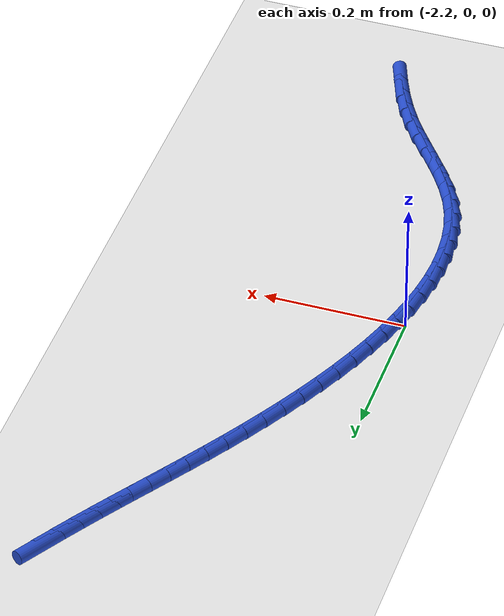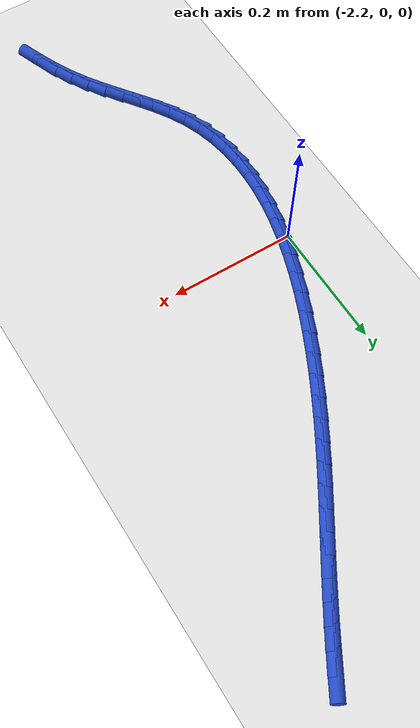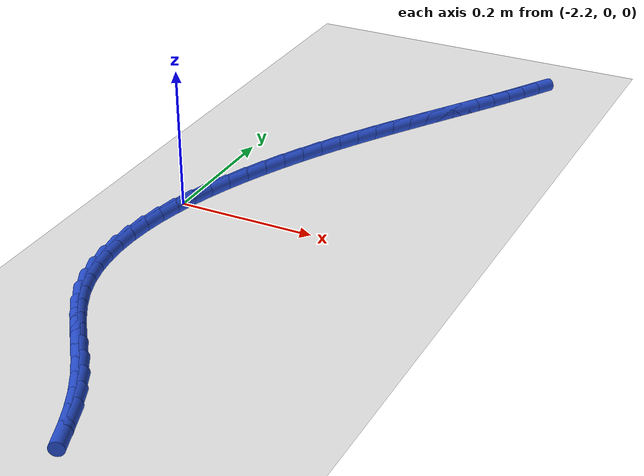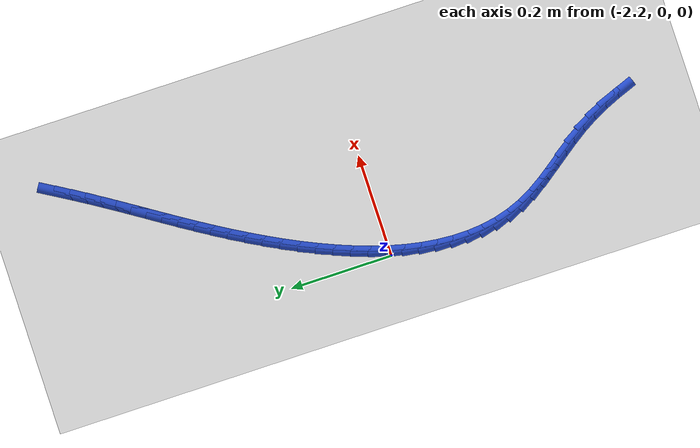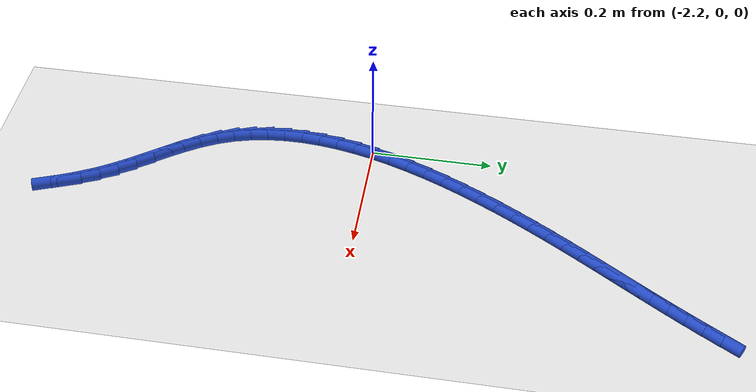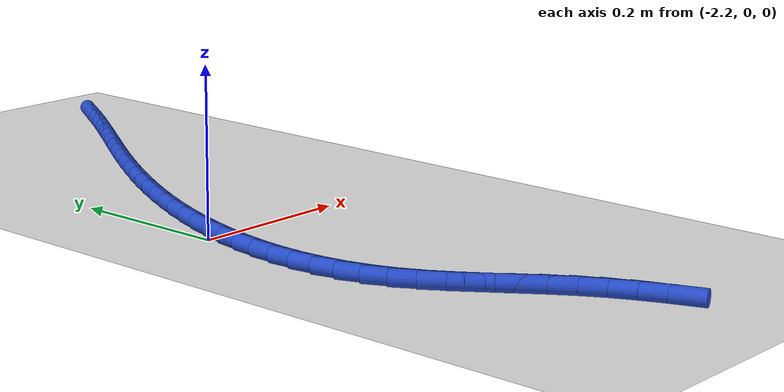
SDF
<sdf version="1.6">
 <world name="default">
  <model name="ground_plane">
   <static>1</static>
   <link name="link">
    <collision name="collision">
     <geometry><plane><normal>0 0 1</normal><size>100 100</size></plane></geometry>
     <surface><friction><ode><mu>100</mu><mu2>50</mu2></ode></friction></surface>
    </collision>
    <visual name="visual">
     <cast_shadows>0</cast_shadows>
     <geometry><plane><normal>0 0 1</normal><size>100 100</size></plane></geometry>
     <material>
      <script><uri>file://media/materials/scripts/gazebo.material</uri><name>Gazebo/WhiteGlow</name></script>
     </material>
    </visual>
   </link>
  </model>
  <model name="line">
   <link name="link_95">
    <pose>-1.8877136883977619 0.5616000017196761 0.01 0 1.57 1.0346925312707642</pose>
    <collision name="collision">
     <geometry><cylinder><radius>0.01</radius><length>0.08</length></cylinder></geometry>
    </collision>
    <visual name="visual">
     <material>
      <script><name>Gazebo/Blue</name><uri>file://media/materials/scripts/gazebo.material</uri></script>
     </material>
     <geometry><cylinder><radius>0.01</radius><length>0.08</length></cylinder></geometry>
    </visual>
   </link>
   <link name="link_96">
    <pose>-1.903283847600181 0.5353940432862209 0.01 0 1.57 1.0240124791503444</pose>
    <collision name="collision">
     <geometry><cylinder><radius>0.01</radius><length>0.08</length></cylinder></geometry>
    </collision>
    <visual name="visual">
     <material>
      <script><name>Gazebo/Blue</name><uri>file://media/materials/scripts/gazebo.material</uri></script>
     </material>
     <geometry><cylinder><radius>0.01</radius><length>0.08</length></cylinder></geometry>
    </visual>
   </link>
   <link name="link_97">
    <pose>-1.9190616971491372 0.5094729990379375 0.01 0 1.57 1.0137060509210019</pose>
    <collision name="collision">
     <geometry><cylinder><radius>0.01</radius><length>0.08</length></cylinder></geometry>
    </collision>
    <visual name="visual">
     <material>
      <script><name>Gazebo/Blue</name><uri>file://media/materials/scripts/gazebo.material</uri></script>
     </material>
     <geometry><cylinder><radius>0.01</radius><length>0.08</length></cylinder></geometry>
    </visual>
   </link>
   <link name="link_98">
    <pose>-1.9350296652350836 0.483838259607306 0.01 0 1.57 1.0045806645061703</pose>
    <collision name="collision">
     <geometry><cylinder><radius>0.01</radius><length>0.08</length></cylinder></geometry>
    </collision>
    <visual name="visual">
     <material>
      <script><name>Gazebo/Blue</name><uri>file://media/materials/scripts/gazebo.material</uri></script>
     </material>
     <geometry><cylinder><radius>0.01</radius><length>0.08</length></cylinder></geometry>
    </visual>
   </link>
   <link name="link_99">
    <pose>-1.951166913453293 0.4584509513742297 0.01 0 1.57 0.9986404226489165</pose>
    <collision name="collision">
     <geometry><cylinder><radius>0.01</radius><length>0.08</length></cylinder></geometry>
    </collision>
    <visual name="visual">
     <material>
      <script><name>Gazebo/Blue</name><uri>file://media/materials/scripts/gazebo.material</uri></script>
     </material>
     <geometry><cylinder><radius>0.01</radius><length>0.08</length></cylinder></geometry>
    </visual>
   </link>
   <link name="link_100">
    <pose>-1.9674447481050954 0.4331753758835347 0.01 0 1.57 0.9962394302315459</pose>
    <collision name="collision">
     <geometry><cylinder><radius>0.01</radius><length>0.08</length></cylinder></geometry>
    </collision>
    <visual name="visual">
     <material>
      <script><name>Gazebo/Blue</name><uri>file://media/materials/scripts/gazebo.material</uri></script>
     </material>
     <geometry><cylinder><radius>0.01</radius><length>0.08</length></cylinder></geometry>
    </visual>
   </link>
   <link name="link_101">
    <pose>-1.9838333187829347 0.40786157701533104 0.01 0 1.57 0.9973716119797047</pose>
    <collision name="collision">
     <geometry><cylinder><radius>0.01</radius><length>0.08</length></cylinder></geometry>
    </collision>
    <visual name="visual">
     <material>
      <script><name>Gazebo/Blue</name><uri>file://media/materials/scripts/gazebo.material</uri></script>
     </material>
     <geometry><cylinder><radius>0.01</radius><length>0.08</length></cylinder></geometry>
    </visual>
   </link>
   <link name="link_102">
    <pose>-2.000302775079253 0.3823595986497298 0.01 0 1.57 1.0019549818121887</pose>
    <collision name="collision">
     <geometry><cylinder><radius>0.01</radius><length>0.08</length></cylinder></geometry>
    </collision>
    <visual name="visual">
     <material>
      <script><name>Gazebo/Blue</name><uri>file://media/materials/scripts/gazebo.material</uri></script>
     </material>
     <geometry><cylinder><radius>0.01</radius><length>0.08</length></cylinder></geometry>
    </visual>
   </link>
   <link name="link_103">
    <pose>-2.0168232665864942 0.35651948466684097 0.01 0 1.57 1.0098366286310339</pose>
    <collision name="collision">
     <geometry><cylinder><radius>0.01</radius><length>0.08</length></cylinder></geometry>
    </collision>
    <visual name="visual">
     <material>
      <script><name>Gazebo/Blue</name><uri>file://media/materials/scripts/gazebo.material</uri></script>
     </material>
     <geometry><cylinder><radius>0.01</radius><length>0.08</length></cylinder></geometry>
    </visual>
   </link>
   <link name="link_104">
    <pose>-2.033364942897101 0.33019127894677575 0.01 0 1.57 1.0208000986084336</pose>
    <collision name="collision">
     <geometry><cylinder><radius>0.01</radius><length>0.08</length></cylinder></geometry>
    </collision>
    <visual name="visual">
     <material>
      <script><name>Gazebo/Blue</name><uri>file://media/materials/scripts/gazebo.material</uri></script>
     </material>
     <geometry><cylinder><radius>0.01</radius><length>0.08</length></cylinder></geometry>
    </visual>
   </link>
   <link name="link_105">
    <pose>-2.0498979536035162 0.30322502536964396 0.01 0 1.57 1.0345571159544618</pose>
    <collision name="collision">
     <geometry><cylinder><radius>0.01</radius><length>0.08</length></cylinder></geometry>
    </collision>
    <visual name="visual">
     <material>
      <script><name>Gazebo/Blue</name><uri>file://media/materials/scripts/gazebo.material</uri></script>
     </material>
     <geometry><cylinder><radius>0.01</radius><length>0.08</length></cylinder></geometry>
    </visual>
   </link>
   <link name="link_106">
    <pose>-2.0663873277847506 0.2754805029605468 0.01 0 1.57 1.0506456689124473</pose>
    <collision name="collision">
     <geometry><cylinder><radius>0.01</radius><length>0.08</length></cylinder></geometry>
    </collision>
    <visual name="visual">
     <material>
      <script><name>Gazebo/Blue</name><uri>file://media/materials/scripts/gazebo.material</uri></script>
     </material>
     <geometry><cylinder><radius>0.01</radius><length>0.08</length></cylinder></geometry>
    </visual>
   </link>
   <link name="link_107">
    <pose>-2.0827270958089503 0.2469524738382446 0.01 0 1.57 1.0689433049790997</pose>
    <collision name="collision">
     <geometry><cylinder><radius>0.01</radius><length>0.08</length></cylinder></geometry>
    </collision>
    <visual name="visual">
     <material>
      <script><name>Gazebo/Blue</name><uri>file://media/materials/scripts/gazebo.material</uri></script>
     </material>
     <geometry><cylinder><radius>0.01</radius><length>0.08</length></cylinder></geometry>
    </visual>
   </link>
   <link name="link_108">
    <pose>-2.098759371675308 0.217734403774113 0.01 0 1.57 1.0896079665974485</pose>
    <collision name="collision">
     <geometry><cylinder><radius>0.01</radius><length>0.08</length></cylinder></geometry>
    </collision>
    <visual name="visual">
     <material>
      <script><name>Gazebo/Blue</name><uri>file://media/materials/scripts/gazebo.material</uri></script>
     </material>
     <geometry><cylinder><radius>0.01</radius><length>0.08</length></cylinder></geometry>
    </visual>
   </link>
   <link name="link_109">
    <pose>-2.1143250829525617 0.1879220141868691 0.01 0 1.57 1.1128504491670155</pose>
    <collision name="collision">
     <geometry><cylinder><radius>0.01</radius><length>0.08</length></cylinder></geometry>
    </collision>
    <visual name="visual">
     <material>
      <script><name>Gazebo/Blue</name><uri>file://media/materials/scripts/gazebo.material</uri></script>
     </material>
     <geometry><cylinder><radius>0.01</radius><length>0.08</length></cylinder></geometry>
    </visual>
   </link>
   <link name="link_110">
    <pose>-2.1292651572094474 0.1576110264952284 0.01 0 1.57 1.1389326177447758</pose>
    <collision name="collision">
     <geometry><cylinder><radius>0.01</radius><length>0.08</length></cylinder></geometry>
    </collision>
    <visual name="visual">
     <material>
      <script><name>Gazebo/Blue</name><uri>file://media/materials/scripts/gazebo.material</uri></script>
     </material>
     <geometry><cylinder><radius>0.01</radius><length>0.08</length></cylinder></geometry>
    </visual>
   </link>
   <link name="link_111">
    <pose>-2.1434205220147025 0.12689716211790797 0.01 0 1.57 1.1681709678200485</pose>
    <collision name="collision">
     <geometry><cylinder><radius>0.01</radius><length>0.08</length></cylinder></geometry>
    </collision>
    <visual name="visual">
     <material>
      <script><name>Gazebo/Blue</name><uri>file://media/materials/scripts/gazebo.material</uri></script>
     </material>
     <geometry><cylinder><radius>0.01</radius><length>0.08</length></cylinder></geometry>
    </visual>
   </link>
   <link name="link_112">
    <pose>-2.1566321049370654 0.0958761424736232 0.01 0 1.57 1.2009407658847573</pose>
    <collision name="collision">
     <geometry><cylinder><radius>0.01</radius><length>0.08</length></cylinder></geometry>
    </collision>
    <visual name="visual">
     <material>
      <script><name>Gazebo/Blue</name><uri>file://media/materials/scripts/gazebo.material</uri></script>
     </material>
     <geometry><cylinder><radius>0.01</radius><length>0.08</length></cylinder></geometry>
    </visual>
   </link>
   <link name="link_113">
    <pose>-2.168740833545271 0.06464368898109123 0.01 0 1.57 1.2376798313679016</pose>
    <collision name="collision">
     <geometry><cylinder><radius>0.01</radius><length>0.08</length></cylinder></geometry>
    </collision>
    <visual name="visual">
     <material>
      <script><name>Gazebo/Blue</name><uri>file://media/materials/scripts/gazebo.material</uri></script>
     </material>
     <geometry><cylinder><radius>0.01</radius><length>0.08</length></cylinder></geometry>
    </visual>
   </link>
   <link name="link_114">
    <pose>-2.179587635408058 0.03329552305902747 0.01 0 1.57 1.2788904841497277</pose>
    <collision name="collision">
     <geometry><cylinder><radius>0.01</radius><length>0.08</length></cylinder></geometry>
    </collision>
    <visual name="visual">
     <material>
      <script><name>Gazebo/Blue</name><uri>file://media/materials/scripts/gazebo.material</uri></script>
     </material>
     <geometry><cylinder><radius>0.01</radius><length>0.08</length></cylinder></geometry>
    </visual>
   </link>
   <link name="link_115">
    <pose>-2.1890134380941624 0.0019273661261489557 0.01 0 1.57 1.3251373082474978</pose>
    <collision name="collision">
     <geometry><cylinder><radius>0.01</radius><length>0.08</length></cylinder></geometry>
    </collision>
    <visual name="visual">
     <material>
      <script><name>Gazebo/Blue</name><uri>file://media/materials/scripts/gazebo.material</uri></script>
     </material>
     <geometry><cylinder><radius>0.01</radius><length>0.08</length></cylinder></geometry>
    </visual>
   </link>
   <link name="link_116">
    <pose>-2.1968591691723223 -0.029365060398828392 0.01 0 1.57 1.3770371011281652</pose>
    <collision name="collision">
     <geometry><cylinder><radius>0.01</radius><length>0.08</length></cylinder></geometry>
    </collision>
    <visual name="visual">
     <material>
      <script><name>Gazebo/Blue</name><uri>file://media/materials/scripts/gazebo.material</uri></script>
     </material>
     <geometry><cylinder><radius>0.01</radius><length>0.08</length></cylinder></geometry>
    </visual>
   </link>
   <link name="link_117">
    <pose>-2.2029657562112734 -0.06048603509718921 0.01 0 1.57 1.435235711652587</pose>
    <collision name="collision">
     <geometry><cylinder><radius>0.01</radius><length>0.08</length></cylinder></geometry>
    </collision>
    <visual name="visual">
     <material>
      <script><name>Gazebo/Blue</name><uri>file://media/materials/scripts/gazebo.material</uri></script>
     </material>
     <geometry><cylinder><radius>0.01</radius><length>0.08</length></cylinder></geometry>
    </visual>
   </link>
   <link name="link_118">
    <pose>-2.2071741267797544 -0.0913398365502156 0.01 0 1.57 1.5003647187309193</pose>
    <collision name="collision">
     <geometry><cylinder><radius>0.01</radius><length>0.08</length></cylinder></geometry>
    </collision>
    <visual name="visual">
     <material>
      <script><name>Gazebo/Blue</name><uri>file://media/materials/scripts/gazebo.material</uri></script>
     </material>
     <geometry><cylinder><radius>0.01</radius><length>0.08</length></cylinder></geometry>
    </visual>
   </link>
   <link name="link_119">
    <pose>-2.209325208446501 -0.12183074333919203 0.01 0 1.57 -1.5686226809654913</pose>
    <collision name="collision">
     <geometry><cylinder><radius>0.01</radius><length>0.08</length></cylinder></geometry>
    </collision>
    <visual name="visual">
     <material>
      <script><name>Gazebo/Blue</name><uri>file://media/materials/scripts/gazebo.material</uri></script>
     </material>
     <geometry><cylinder><radius>0.01</radius><length>0.08</length></cylinder></geometry>
    </visual>
   </link>
   <link name="link_120">
    <pose>-2.2092599287802503 -0.1518630340454023 0.01 0 1.57 -1.4881868318567177</pose>
    <collision name="collision">
     <geometry><cylinder><radius>0.01</radius><length>0.08</length></cylinder></geometry>
    </collision>
    <visual name="visual">
     <material>
      <script><name>Gazebo/Blue</name><uri>file://media/materials/scripts/gazebo.material</uri></script>
     </material>
     <geometry><cylinder><radius>0.01</radius><length>0.08</length></cylinder></geometry>
    </visual>
   </link>
   <link name="link_121">
    <pose>-2.2068192153497406 -0.1813409872501302 0.01 0 1.57 -1.3998962875834113</pose>
    <collision name="collision">
     <geometry><cylinder><radius>0.01</radius><length>0.08</length></cylinder></geometry>
    </collision>
    <visual name="visual">
     <material>
      <script><name>Gazebo/Blue</name><uri>file://media/materials/scripts/gazebo.material</uri></script>
     </material>
     <geometry><cylinder><radius>0.01</radius><length>0.08</length></cylinder></geometry>
    </visual>
   </link>
   <link name="link_122">
    <pose>-2.2018439957237077 -0.21016888153466023 0.01 0 1.57 -1.3042115396814118</pose>
    <collision name="collision">
     <geometry><cylinder><radius>0.01</radius><length>0.08</length></cylinder></geometry>
    </collision>
    <visual name="visual">
     <material>
      <script><name>Gazebo/Blue</name><uri>file://media/materials/scripts/gazebo.material</uri></script>
     </material>
     <geometry><cylinder><radius>0.01</radius><length>0.08</length></cylinder></geometry>
    </visual>
   </link>
   <link name="link_123">
    <pose>-2.1941751974708894 -0.23825099548027454 0.01 0 1.57 -1.2022068797972287</pose>
    <collision name="collision">
     <geometry><cylinder><radius>0.01</radius><length>0.08</length></cylinder></geometry>
    </collision>
    <visual name="visual">
     <material>
      <script><name>Gazebo/Blue</name><uri>file://media/materials/scripts/gazebo.material</uri></script>
     </material>
     <geometry><cylinder><radius>0.01</radius><length>0.08</length></cylinder></geometry>
    </visual>
   </link>
   <link name="link_124">
    <pose>-2.1836537481600224 -0.2654916076682577 0.01 0 1.57 -1.09785348858358</pose>
    <collision name="collision">
     <geometry><cylinder><radius>0.01</radius><length>0.08</length></cylinder></geometry>
    </collision>
    <visual name="visual">
     <material>
      <script><name>Gazebo/Blue</name><uri>file://media/materials/scripts/gazebo.material</uri></script>
     </material>
     <geometry><cylinder><radius>0.01</radius><length>0.08</length></cylinder></geometry>
    </visual>
   </link>
   <link name="link_125">
    <pose>-2.170182135248965 -0.29182013467031903 0.01 0 1.57 -1.0142788184578027</pose>
    <collision name="collision">
     <geometry><cylinder><radius>0.01</radius><length>0.08</length></cylinder></geometry>
    </collision>
    <visual name="visual">
     <material>
      <script><name>Gazebo/Blue</name><uri>file://media/materials/scripts/gazebo.material</uri></script>
     </material>
     <geometry><cylinder><radius>0.01</radius><length>0.08</length></cylinder></geometry>
    </visual>
   </link>
   <link name="link_126">
    <pose>-2.154262037593511 -0.3174106729599646 0.01 0 1.57 -0.9623644795926112</pose>
    <collision name="collision">
     <geometry><cylinder><radius>0.01</radius><length>0.08</length></cylinder></geometry>
    </collision>
    <visual name="visual">
     <material>
      <script><name>Gazebo/Blue</name><uri>file://media/materials/scripts/gazebo.material</uri></script>
     </material>
     <geometry><cylinder><radius>0.01</radius><length>0.08</length></cylinder></geometry>
    </visual>
   </link>
   <link name="link_127">
    <pose>-2.136732757731353 -0.34257518769441814 0.01 0 1.57 -0.9400256161044214</pose>
    <collision name="collision">
     <geometry><cylinder><radius>0.01</radius><length>0.08</length></cylinder></geometry>
    </collision>
    <visual name="visual">
     <material>
      <script><name>Gazebo/Blue</name><uri>file://media/materials/scripts/gazebo.material</uri></script>
     </material>
     <geometry><cylinder><radius>0.01</radius><length>0.08</length></cylinder></geometry>
    </visual>
   </link>
   <link name="link_128">
    <pose>-2.118437384917196 -0.3676271903373951 0.01 0 1.57 -0.9458294419252132</pose>
    <collision name="collision">
     <geometry><cylinder><radius>0.01</radius><length>0.08</length></cylinder></geometry>
    </collision>
    <visual name="visual">
     <material>
      <script><name>Gazebo/Blue</name><uri>file://media/materials/scripts/gazebo.material</uri></script>
     </material>
     <geometry><cylinder><radius>0.01</radius><length>0.08</length></cylinder></geometry>
    </visual>
   </link>
   <link name="link_129">
    <pose>-2.1002190084057455 -0.39288019235261007 0.01 0 1.57 -0.9795779167436196</pose>
    <collision name="collision">
     <geometry><cylinder><radius>0.01</radius><length>0.08</length></cylinder></geometry>
    </collision>
    <visual name="visual">
     <material>
      <script><name>Gazebo/Blue</name><uri>file://media/materials/scripts/gazebo.material</uri></script>
     </material>
     <geometry><cylinder><radius>0.01</radius><length>0.08</length></cylinder></geometry>
    </visual>
   </link>
   <link name="link_130">
    <pose>-2.0829207174517057 -0.4186477052037782 0.01 0 1.57 -1.0411783618334398</pose>
    <collision name="collision">
     <geometry><cylinder><radius>0.01</radius><length>0.08</length></cylinder></geometry>
    </collision>
    <visual name="visual">
     <material>
      <script><name>Gazebo/Blue</name><uri>file://media/materials/scripts/gazebo.material</uri></script>
     </material>
     <geometry><cylinder><radius>0.01</radius><length>0.08</length></cylinder></geometry>
    </visual>
   </link>
   <link name="link_131">
    <pose>-2.06735800722225 -0.44523227213253613 0.01 0 1.57 -1.110731992643648</pose>
    <collision name="collision">
     <geometry><cylinder><radius>0.01</radius><length>0.08</length></cylinder></geometry>
    </collision>
    <visual name="visual">
     <material>
      <script><name>Gazebo/Blue</name><uri>file://media/materials/scripts/gazebo.material</uri></script>
     </material>
     <geometry><cylinder><radius>0.01</radius><length>0.08</length></cylinder></geometry>
    </visual>
   </link>
   <link name="link_132">
    <pose>-2.053747709092669 -0.4726984768026887 0.01 0 1.57 -1.1676352243286678</pose>
    <collision name="collision">
     <geometry><cylinder><radius>0.01</radius><length>0.08</length></cylinder></geometry>
    </collision>
    <visual name="visual">
     <material>
      <script><name>Gazebo/Blue</name><uri>file://media/materials/scripts/gazebo.material</uri></script>
     </material>
     <geometry><cylinder><radius>0.01</radius><length>0.08</length></cylinder></geometry>
    </visual>
   </link>
   <link name="link_133">
    <pose>-2.0417273329887813 -0.5008806315815089 0.01 0 1.57 -1.2106361113848654</pose>
    <collision name="collision">
     <geometry><cylinder><radius>0.01</radius><length>0.08</length></cylinder></geometry>
    </collision>
    <visual name="visual">
     <material>
      <script><name>Gazebo/Blue</name><uri>file://media/materials/scripts/gazebo.material</uri></script>
     </material>
     <geometry><cylinder><radius>0.01</radius><length>0.08</length></cylinder></geometry>
    </visual>
   </link>
  </model>
 </world>
</sdf>
